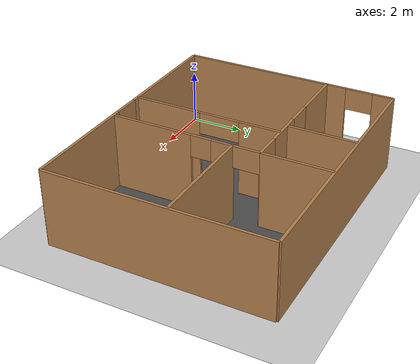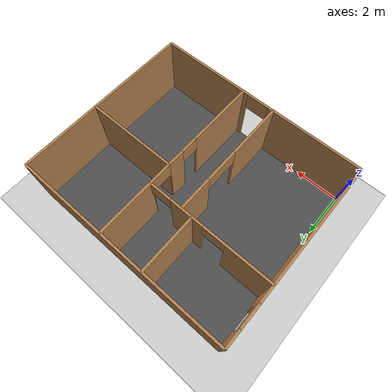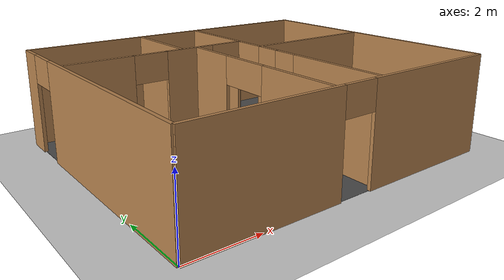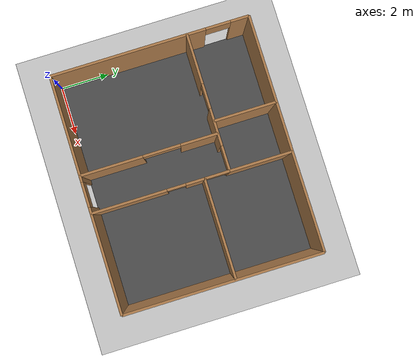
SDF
<sdf version="1.5">
 <world name="default">
  <model name="doorway_0">
   <static>1</static>
   <pose>4.25 0.0 0 0 0 0.0</pose>
   <link name="link">
    <pose>0.5 0 2.4 0 0 0</pose>
    <collision name="collision"><geometry><box><size>1.0 0.1 0.8</size></box></geometry></collision>
    <visual name="visual">
     <geometry><box><size>1.0 0.1 0.8</size></box></geometry>
     <material>
      <script>
       <uri>model://grey_wall/materials/scripts</uri>
       <uri>model://grey_wall/materials/textures</uri>
       <name>Gazebo/Wood</name>
      </script>
     </material>
    </visual>
   </link>
  </model>
  <model name="doorway_1">
   <static>1</static>
   <pose>0.0 6.25 0 0 0 1.5707963267948966</pose>
   <link name="link">
    <pose>0.5 0 2.4 0 0 0</pose>
    <collision name="collision"><geometry><box><size>1.0 0.1 0.8</size></box></geometry></collision>
    <visual name="visual">
     <geometry><box><size>1.0 0.1 0.8</size></box></geometry>
     <material>
      <script>
       <uri>model://grey_wall/materials/scripts</uri>
       <uri>model://grey_wall/materials/textures</uri>
       <name>Gazebo/Wood</name>
      </script>
     </material>
    </visual>
   </link>
  </model>
  <model name="doorway_2">
   <static>1</static>
   <pose>2.0 5.5 0 0 0 0.0</pose>
   <link name="link">
    <pose>0.5 0 2.4 0 0 0</pose>
    <collision name="collision"><geometry><box><size>1.0 0.1 0.8</size></box></geometry></collision>
    <visual name="visual">
     <geometry><box><size>1.0 0.1 0.8</size></box></geometry>
     <material>
      <script>
       <uri>model://grey_wall/materials/scripts</uri>
       <uri>model://grey_wall/materials/textures</uri>
       <name>Gazebo/Wood</name>
      </script>
     </material>
    </visual>
   </link>
  </model>
  <model name="doorway_3">
   <static>1</static>
   <pose>4.5 5.5 0 0 0 0.0</pose>
   <link name="link">
    <pose>0.4950000000000001 0 2.4 0 0 0</pose>
    <collision name="collision"><geometry><box><size>0.99 0.1 0.8</size></box></geometry></collision>
    <visual name="visual">
     <geometry><box><size>0.99 0.1 0.8</size></box></geometry>
     <material>
      <script>
       <uri>model://grey_wall/materials/scripts</uri>
       <uri>model://grey_wall/materials/textures</uri>
       <name>Gazebo/Wood</name>
      </script>
     </material>
    </visual>
   </link>
  </model>
  <model name="doorway_4">
   <static>1</static>
   <pose>5.5 4.5 0 0 0 1.5707963267948966</pose>
   <link name="link">
    <pose>0.5 0 2.4 0 0 0</pose>
    <collision name="collision"><geometry><box><size>1.0 0.1 0.8</size></box></geometry></collision>
    <visual name="visual">
     <geometry><box><size>1.0 0.1 0.8</size></box></geometry>
     <material>
      <script>
       <uri>model://grey_wall/materials/scripts</uri>
       <uri>model://grey_wall/materials/textures</uri>
       <name>Gazebo/Wood</name>
      </script>
     </material>
    </visual>
   </link>
  </model>
  <model name="doorway_5">
   <static>1</static>
   <pose>5.5 3.0 0 0 0 1.5707963267948966</pose>
   <link name="link">
    <pose>0.375 0 2.4 0 0 0</pose>
    <collision name="collision"><geometry><box><size>0.75 0.1 0.8</size></box></geometry></collision>
    <visual name="visual">
     <geometry><box><size>0.75 0.1 0.8</size></box></geometry>
     <material>
      <script>
       <uri>model://grey_wall/materials/scripts</uri>
       <uri>model://grey_wall/materials/textures</uri>
       <name>Gazebo/Wood</name>
      </script>
     </material>
    </visual>
   </link>
  </model>
  <model name="doorway_6">
   <static>1</static>
   <pose>4.0 2.5 0 0 0 1.5707963267948966</pose>
   <link name="link">
    <pose>0.75 0 2.4 0 0 0</pose>
    <collision name="collision"><geometry><box><size>1.5 0.1 0.8</size></box></geometry></collision>
    <visual name="visual">
     <geometry><box><size>1.5 0.1 0.8</size></box></geometry>
     <material>
      <script>
       <uri>model://grey_wall/materials/scripts</uri>
       <uri>model://grey_wall/materials/textures</uri>
       <name>Gazebo/Wood</name>
      </script>
     </material>
    </visual>
   </link>
  </model>
  <include><uri>model://sun</uri></include>
  <include><uri>model://ground_plane</uri></include>
  <model name="floor">
   <static>1</static>
   <link name="link">
    <pose>4.75 4 0 0 0 0</pose>
    <visual name="visual">
     <geometry><box><size>9.5 8 0.005</size></box></geometry>
     <cast_shadows>0</cast_shadows>
     <material><script><name>Gazebo/DarkGrey</name></script></material>
    </visual>
   </link>
  </model>
  <model name="wall_0">
   <static>1</static>
   <link name="link">
    <collision name="collision"><geometry><box><size>8.0 0.1 2.8</size></box></geometry></collision>
    <visual name="visual">
     <cast_shadows>0</cast_shadows>
     <geometry><box><size>8.0 0.1 2.8</size></box></geometry>
     <material>
      <script>
       <uri>model://grey_wall/materials/scripts</uri>
       <uri>model://grey_wall/materials/textures</uri>
       <name>Gazebo/Wood</name>
      </script>
     </material>
    </visual>
    <pose>4.0 0 1.4 0 0 0</pose>
   </link>
   <pose>9.5 0.0 0 0 0 1.5707963267948966</pose>
  </model>
  <model name="wall_1">
   <static>1</static>
   <link name="link">
    <collision name="collision"><geometry><box><size>9.5 0.1 2.8</size></box></geometry></collision>
    <visual name="visual">
     <cast_shadows>0</cast_shadows>
     <geometry><box><size>9.5 0.1 2.8</size></box></geometry>
     <material>
      <script>
       <uri>model://grey_wall/materials/scripts</uri>
       <uri>model://grey_wall/materials/textures</uri>
       <name>Gazebo/Wood</name>
      </script>
     </material>
    </visual>
    <pose>4.75 0 1.4 0 0 0</pose>
   </link>
   <pose>9.5 8.0 0 0 0 3.141592653589793</pose>
  </model>
  <model name="wall_2">
   <static>1</static>
   <link name="link">
    <collision name="collision"><geometry><box><size>4.0 0.1 2.8</size></box></geometry></collision>
    <visual name="visual">
     <cast_shadows>0</cast_shadows>
     <geometry><box><size>4.0 0.1 2.8</size></box></geometry>
     <material>
      <script>
       <uri>model://grey_wall/materials/scripts</uri>
       <uri>model://grey_wall/materials/textures</uri>
       <name>Gazebo/Wood</name>
      </script>
     </material>
    </visual>
    <pose>2.0 0 1.4 0 0 0</pose>
   </link>
   <pose>5.5 4.5 0 0 0 0.0</pose>
  </model>
  <model name="wall_3">
   <static>1</static>
   <link name="link">
    <collision name="collision"><geometry><box><size>2.5 0.1 2.8</size></box></geometry></collision>
    <visual name="visual">
     <cast_shadows>0</cast_shadows>
     <geometry><box><size>2.5 0.1 2.8</size></box></geometry>
     <material>
      <script>
       <uri>model://grey_wall/materials/scripts</uri>
       <uri>model://grey_wall/materials/textures</uri>
       <name>Gazebo/Wood</name>
      </script>
     </material>
    </visual>
    <pose>1.25 0 1.4 0 0 0</pose>
   </link>
   <pose>3.5 5.5 0 0 0 1.5707963267948966</pose>
  </model>
  <model name="wall_4">
   <static>1</static>
   <link name="link">
    <collision name="collision"><geometry><box><size>4.25 0.1 2.8</size></box></geometry></collision>
    <visual name="visual">
     <cast_shadows>0</cast_shadows>
     <geometry><box><size>4.25 0.1 2.8</size></box></geometry>
     <material>
      <script>
       <uri>model://grey_wall/materials/scripts</uri>
       <uri>model://grey_wall/materials/textures</uri>
       <name>Gazebo/Wood</name>
      </script>
     </material>
    </visual>
    <pose>2.125 0 1.4 0 0 0</pose>
   </link>
  </model>
  <model name="wall_5">
   <static>1</static>
   <link name="link">
    <collision name="collision"><geometry><box><size>4.25 0.1 2.8</size></box></geometry></collision>
    <visual name="visual">
     <cast_shadows>0</cast_shadows>
     <geometry><box><size>4.25 0.1 2.8</size></box></geometry>
     <material>
      <script>
       <uri>model://grey_wall/materials/scripts</uri>
       <uri>model://grey_wall/materials/textures</uri>
       <name>Gazebo/Wood</name>
      </script>
     </material>
    </visual>
    <pose>2.125 0 1.4 0 0 0</pose>
   </link>
   <pose>5.25 0.0 0 0 0 0.0</pose>
  </model>
  <model name="wall_6">
   <static>1</static>
   <link name="link">
    <collision name="collision"><geometry><box><size>0.75 0.1 2.8</size></box></geometry></collision>
    <visual name="visual">
     <cast_shadows>0</cast_shadows>
     <geometry><box><size>0.75 0.1 2.8</size></box></geometry>
     <material>
      <script>
       <uri>model://grey_wall/materials/scripts</uri>
       <uri>model://grey_wall/materials/textures</uri>
       <name>Gazebo/Wood</name>
      </script>
     </material>
    </visual>
    <pose>0.375 0 1.4 0 0 0</pose>
   </link>
   <pose>0.0 8.0 0 0 0 -1.5707963267948966</pose>
  </model>
  <model name="wall_7">
   <static>1</static>
   <link name="link">
    <collision name="collision"><geometry><box><size>6.25 0.1 2.8</size></box></geometry></collision>
    <visual name="visual">
     <cast_shadows>0</cast_shadows>
     <geometry><box><size>6.25 0.1 2.8</size></box></geometry>
     <material>
      <script>
       <uri>model://grey_wall/materials/scripts</uri>
       <uri>model://grey_wall/materials/textures</uri>
       <name>Gazebo/Wood</name>
      </script>
     </material>
    </visual>
    <pose>3.125 0 1.4 0 0 0</pose>
   </link>
   <pose>0.0 6.25 0 0 0 -1.5707963267948966</pose>
  </model>
  <model name="wall_8">
   <static>1</static>
   <link name="link">
    <collision name="collision"><geometry><box><size>2.0 0.1 2.8</size></box></geometry></collision>
    <visual name="visual">
     <cast_shadows>0</cast_shadows>
     <geometry><box><size>2.0 0.1 2.8</size></box></geometry>
     <material>
      <script>
       <uri>model://grey_wall/materials/scripts</uri>
       <uri>model://grey_wall/materials/textures</uri>
       <name>Gazebo/Wood</name>
      </script>
     </material>
    </visual>
    <pose>1.0 0 1.4 0 0 0</pose>
   </link>
   <pose>0.0 5.5 0 0 0 0.0</pose>
  </model>
  <model name="wall_9">
   <static>1</static>
   <link name="link">
    <collision name="collision"><geometry><box><size>1.5 0.1 2.8</size></box></geometry></collision>
    <visual name="visual">
     <cast_shadows>0</cast_shadows>
     <geometry><box><size>1.5 0.1 2.8</size></box></geometry>
     <material>
      <script>
       <uri>model://grey_wall/materials/scripts</uri>
       <uri>model://grey_wall/materials/textures</uri>
       <name>Gazebo/Wood</name>
      </script>
     </material>
    </visual>
    <pose>0.75 0 1.4 0 0 0</pose>
   </link>
   <pose>3.0 5.5 0 0 0 0.0</pose>
  </model>
  <model name="wall_10">
   <static>1</static>
   <link name="link">
    <collision name="collision">
     <geometry><box><size>0.009999999999999787 0.1 2.8</size></box></geometry>
    </collision>
    <visual name="visual">
     <cast_shadows>0</cast_shadows>
     <geometry><box><size>0.009999999999999787 0.1 2.8</size></box></geometry>
     <material>
      <script>
       <uri>model://grey_wall/materials/scripts</uri>
       <uri>model://grey_wall/materials/textures</uri>
       <name>Gazebo/Wood</name>
      </script>
     </material>
    </visual>
    <pose>0.004999999999999893 0 1.4 0 0 0</pose>
   </link>
   <pose>5.49 5.5 0 0 0 0.0</pose>
  </model>
  <model name="wall_11">
   <static>1</static>
   <link name="link">
    <collision name="collision"><geometry><box><size>2.5 0.1 2.8</size></box></geometry></collision>
    <visual name="visual">
     <cast_shadows>0</cast_shadows>
     <geometry><box><size>2.5 0.1 2.8</size></box></geometry>
     <material>
      <script>
       <uri>model://grey_wall/materials/scripts</uri>
       <uri>model://grey_wall/materials/textures</uri>
       <name>Gazebo/Wood</name>
      </script>
     </material>
    </visual>
    <pose>1.25 0 1.4 0 0 0</pose>
   </link>
   <pose>5.5 5.5 0 0 0 1.5707963267948966</pose>
  </model>
  <model name="wall_12">
   <static>1</static>
   <link name="link">
    <collision name="collision"><geometry><box><size>3.0 0.1 2.8</size></box></geometry></collision>
    <visual name="visual">
     <cast_shadows>0</cast_shadows>
     <geometry><box><size>3.0 0.1 2.8</size></box></geometry>
     <material>
      <script>
       <uri>model://grey_wall/materials/scripts</uri>
       <uri>model://grey_wall/materials/textures</uri>
       <name>Gazebo/Wood</name>
      </script>
     </material>
    </visual>
    <pose>1.5 0 1.4 0 0 0</pose>
   </link>
   <pose>5.5 0.0 0 0 0 1.5707963267948966</pose>
  </model>
  <model name="wall_13">
   <static>1</static>
   <link name="link">
    <collision name="collision"><geometry><box><size>0.75 0.1 2.8</size></box></geometry></collision>
    <visual name="visual">
     <cast_shadows>0</cast_shadows>
     <geometry><box><size>0.75 0.1 2.8</size></box></geometry>
     <material>
      <script>
       <uri>model://grey_wall/materials/scripts</uri>
       <uri>model://grey_wall/materials/textures</uri>
       <name>Gazebo/Wood</name>
      </script>
     </material>
    </visual>
    <pose>0.375 0 1.4 0 0 0</pose>
   </link>
   <pose>5.5 3.75 0 0 0 1.5707963267948966</pose>
  </model>
  <model name="wall_14">
   <static>1</static>
   <link name="link">
    <collision name="collision"><geometry><box><size>2.5 0.1 2.8</size></box></geometry></collision>
    <visual name="visual">
     <cast_shadows>0</cast_shadows>
     <geometry><box><size>2.5 0.1 2.8</size></box></geometry>
     <material>
      <script>
       <uri>model://grey_wall/materials/scripts</uri>
       <uri>model://grey_wall/materials/textures</uri>
       <name>Gazebo/Wood</name>
      </script>
     </material>
    </visual>
    <pose>1.25 0 1.4 0 0 0</pose>
   </link>
   <pose>4.0 0.0 0 0 0 1.5707963267948966</pose>
  </model>
  <model name="wall_15">
   <static>1</static>
   <link name="link">
    <collision name="collision"><geometry><box><size>1.5 0.1 2.8</size></box></geometry></collision>
    <visual name="visual">
     <cast_shadows>0</cast_shadows>
     <geometry><box><size>1.5 0.1 2.8</size></box></geometry>
     <material>
      <script>
       <uri>model://grey_wall/materials/scripts</uri>
       <uri>model://grey_wall/materials/textures</uri>
       <name>Gazebo/Wood</name>
      </script>
     </material>
    </visual>
    <pose>0.75 0 1.4 0 0 0</pose>
   </link>
   <pose>4.0 4.0 0 0 0 1.5707963267948966</pose>
  </model>
 </world>
</sdf>
